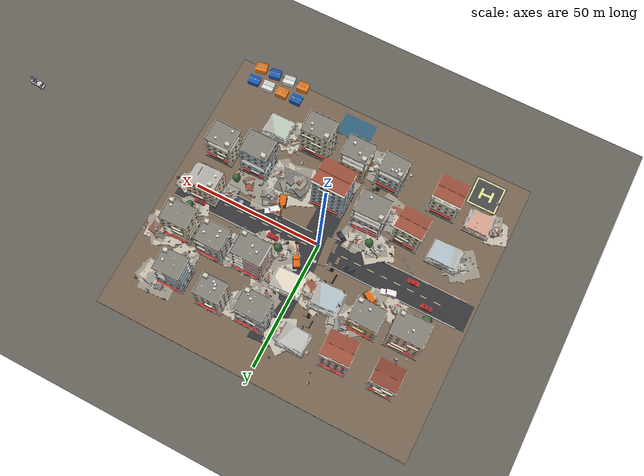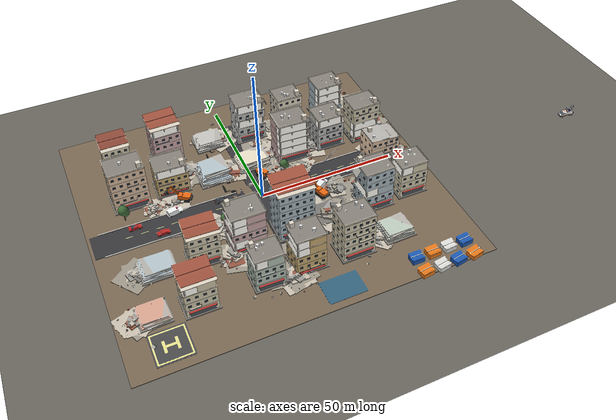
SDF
<?xml version="1.0"?>
<sdf version="1.7">
  <world name="disaster_city">

    <!-- kinematic pose control for the drones (mission node -> /gazebo/set_entity_state) -->
    <plugin name="gazebo_ros_state" filename="libgazebo_ros_state.so">
      <ros><namespace>/gazebo</namespace></ros>
      <update_rate>60.0</update_rate>
    </plugin>

    <!-- ================= physics / scene ================= -->
    <physics name="ode_default" type="ode">
      <max_step_size>0.004</max_step_size>
      <real_time_update_rate>250</real_time_update_rate>
      <real_time_factor>1</real_time_factor>
    </physics>

    <gui fullscreen="0">
      <camera name="user_camera">
        <pose>150 -62 42 0 0.42 2.35</pose>
        <view_controller>orbit</view_controller>
        <projection_type>perspective</projection_type>
      </camera>
    </gui>

    <scene>
      <ambient>0.55 0.55 0.58 1</ambient>
      <background>0.74 0.82 0.92 1</background>
      <shadows>true</shadows>
      <grid>false</grid>
      <origin_visual>false</origin_visual>
    </scene>

    <light name="key_sun" type="directional">
      <cast_shadows>true</cast_shadows>
      <pose>0 0 60 0 0 0</pose>
      <diffuse>1.05 0.99 0.89 1</diffuse>
      <specular>0.35 0.33 0.29 1</specular>
      <direction>-0.35 0.42 -0.84</direction>
      <attenuation>
        <range>1000</range>
        <constant>0.85</constant>
        <linear>0.005</linear>
        <quadratic>0.0</quadratic>
      </attenuation>
    </light>

    <light name="sky_fill" type="directional">
      <cast_shadows>false</cast_shadows>
      <pose>0 0 50 0 0 0</pose>
      <diffuse>0.40 0.40 0.42 1</diffuse>
      <specular>0.04 0.04 0.05 1</specular>
      <direction>0.55 -0.35 -0.75</direction>
    </light>

    <!-- spot washing the EAST facade of the damaged building (the victim
         facade) from the open ground east of it -->
    <light name="facade_spot" type="spot">
      <cast_shadows>false</cast_shadows>
      <pose>66 0 16 0 0 3.1416</pose>
      <diffuse>0.45 0.43 0.38 1</diffuse>
      <specular>0.1 0.1 0.09 1</specular>
      <direction>-0.80 0 -0.60</direction>
      <spot>
        <inner_angle>0.5</inner_angle>
        <outer_angle>0.95</outer_angle>
        <falloff>1.4</falloff>
      </spot>
      <attenuation>
        <range>70</range>
        <constant>0.6</constant>
        <linear>0.02</linear>
        <quadratic>0.0</quadratic>
      </attenuation>
    </light>

    <!-- soft warm fill over the building so it is not a dark mass -->
    <light name="building_fill" type="point">
      <cast_shadows>false</cast_shadows>
      <pose>48 0 22 0 0 0</pose>
      <diffuse>0.35 0.33 0.30 1</diffuse>
      <specular>0.03 0.03 0.03 1</specular>
      <attenuation>
        <range>45</range>
        <constant>0.6</constant>
        <linear>0.025</linear>
        <quadratic>0.0</quadratic>
      </attenuation>
    </light>

    <model name="terrain">
      <static>true</static>
      <pose>30 0 -0.05 0 0 0</pose>
      <link name="link">
        <collision name="c">
          <geometry><plane><normal>0 0 1</normal><size>600 600</size></plane></geometry>
          <surface><friction><ode><mu>80</mu><mu2>40</mu2></ode></friction></surface>
        </collision>
        <visual name="v">
          <cast_shadows>false</cast_shadows>
          <geometry><plane><normal>0 0 1</normal><size>600 600</size></plane></geometry>
          <material>
            <ambient>0.32 0.31 0.29 1</ambient>
            <diffuse>0.40 0.39 0.36 1</diffuse>
          </material>
        </visual>
      </link>
    </model>

    <!-- ================= the city (anchor, at the origin) ================= -->
    <include>
      <name>disaster_city</name>
      <uri>model://disaster_city</uri>
      <pose>0 0 0 0 0 0</pose>
    </include>

    <include>
      <name>damaged_building</name>
      <uri>model://damaged_building</uri>
      <pose>46 0 0.33 0 0 0</pose>
    </include>

    <include>
      <name>fiveg_base_station</name>
      <uri>model://fiveg_base_station</uri>
      <pose>125 -8 0.60 0 0 3.05</pose>
    </include>

    <model name="victim_nook">
      <static>true</static>
      <pose>46 0 0.33 0 0 0</pose>
      <link name="body">
        <visual name="slab">
          <pose>4.6 0.0 5.94 0 0 0</pose>
          <geometry><box><size>2.8 3.6 0.15</size></box></geometry>
          <material><ambient>0.22 0.22 0.24 1</ambient><diffuse>0.32 0.32 0.34 1</diffuse></material>
        </visual>
        <visual name="baffle_n">
          <pose>5.0 0.5 7.36 0 0 0</pose>
          <geometry><box><size>2.0 0.12 3.1</size></box></geometry>
          <material><ambient>0.15 0.14 0.13 1</ambient><diffuse>0.23 0.21 0.19 1</diffuse></material>
        </visual>
        <visual name="baffle_s">
          <pose>5.0 -0.5 7.36 0 0 0</pose>
          <geometry><box><size>2.0 0.12 3.1</size></box></geometry>
          <material><ambient>0.15 0.14 0.13 1</ambient><diffuse>0.23 0.21 0.19 1</diffuse></material>
        </visual>
        <visual name="baffle_back">
          <pose>4.05 0.0 7.36 0 0 0</pose>
          <geometry><box><size>0.12 1.3 3.1</size></box></geometry>
          <material><ambient>0.15 0.14 0.13 1</ambient><diffuse>0.23 0.21 0.19 1</diffuse></material>
        </visual>
        <visual name="baffle_top">
          <pose>5.0 0.0 8.41 0 0 0</pose>
          <geometry><box><size>2.0 1.3 0.2</size></box></geometry>
          <material><ambient>0.15 0.14 0.13 1</ambient><diffuse>0.23 0.21 0.19 1</diffuse></material>
        </visual>
      </link>
    </model>

    <!-- box-figure person on the deck, inside the opening, facing east (+X)
         out the window, right arm raised. World pose = building pose +
         local (5.05, 0, 6.01). -->
    <include>
      <name>victim</name>
      <uri>model://victim</uri>
      <pose>51.05 0.0 6.34 0 0 0</pose>
    </include>

  </world>
</sdf>

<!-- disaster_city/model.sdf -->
<sdf version="1.7">
  <model name="disaster_city">
    <static>true</static>
    <link name="body">
      <visual name="v">
        <geometry><mesh><uri>model://disaster_city/meshes/mesh.dae</uri></mesh></geometry>
      </visual>
    </link>
  </model>
</sdf>

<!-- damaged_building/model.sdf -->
<sdf version="1.7">
  <model name="damaged_building">
    <static>true</static>
    <link name="body">
      <visual name="v">
        <geometry><mesh><uri>model://damaged_building/meshes/mesh.dae</uri></mesh></geometry>
      </visual>
    </link>
  </model>
</sdf>

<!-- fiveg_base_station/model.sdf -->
<sdf version="1.7">
  <model name="fiveg_base_station">
    <static>true</static>
    <link name="body">
      <visual name="v">
        <geometry><mesh><uri>model://fiveg_base_station/meshes/mesh.dae</uri></mesh></geometry>
      </visual>
    </link>
  </model>
</sdf>

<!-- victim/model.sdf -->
<sdf version="1.7">
  <model name="victim">
    <static>true</static>
    <link name="body">

      <visual name="leg_l">
        <pose>0 0.12 0.42 0 0 0</pose>
        <geometry><box><size>0.18 0.16 0.84</size></box></geometry>
        <material><ambient>0.06 0.07 0.14 1</ambient><diffuse>0.13 0.15 0.30 1</diffuse></material>
      </visual>
      <visual name="leg_r">
        <pose>0 -0.12 0.42 0 0 0</pose>
        <geometry><box><size>0.18 0.16 0.84</size></box></geometry>
        <material><ambient>0.06 0.07 0.14 1</ambient><diffuse>0.13 0.15 0.30 1</diffuse></material>
      </visual>

      <visual name="pelvis">
        <pose>0 0 0.96 0 0 0</pose>
        <geometry><box><size>0.28 0.36 0.24</size></box></geometry>
        <material>
          <ambient>0.9 0.4 0.05 1</ambient><diffuse>1.0 0.45 0.05 1</diffuse>
          <emissive>0.55 0.22 0.02 1</emissive>
        </material>
      </visual>
      <visual name="torso">
        <pose>0 0 1.36 0 0 0</pose>
        <geometry><box><size>0.26 0.42 0.60</size></box></geometry>
        <material>
          <ambient>1.0 0.45 0.05 1</ambient><diffuse>1.0 0.5 0.08 1</diffuse>
          <emissive>0.7 0.30 0.03 1</emissive>
        </material>
      </visual>
      <!-- reflective band -->
      <visual name="hiviz_band">
        <pose>0.001 0 1.20 0 0 0</pose>
        <geometry><box><size>0.27 0.43 0.10</size></box></geometry>
        <material>
          <ambient>0.9 0.9 0.85 1</ambient><diffuse>0.95 0.95 0.9 1</diffuse>
          <emissive>0.8 0.8 0.75 1</emissive>
        </material>
      </visual>

      <visual name="neck">
        <pose>0 0 1.70 0 0 0</pose>
        <geometry><box><size>0.10 0.12 0.10</size></box></geometry>
        <material><ambient>0.55 0.4 0.3 1</ambient><diffuse>0.82 0.62 0.48 1</diffuse>
          <emissive>0.3 0.22 0.16 1</emissive></material>
      </visual>
      <visual name="head">
        <pose>0 0 1.84 0 0 0</pose>
        <geometry><box><size>0.17 0.16 0.20</size></box></geometry>
        <material><ambient>0.55 0.4 0.3 1</ambient><diffuse>0.82 0.62 0.48 1</diffuse>
          <emissive>0.32 0.24 0.18 1</emissive></material>
      </visual>
      <!-- white hard hat -->
      <visual name="hardhat">
        <pose>-0.01 0 1.97 0 0 0</pose>
        <geometry><box><size>0.20 0.19 0.10</size></box></geometry>
        <material>
          <ambient>0.95 0.95 0.95 1</ambient><diffuse>1.0 1.0 1.0 1</diffuse>
          <emissive>0.75 0.75 0.75 1</emissive>
        </material>
      </visual>

      <visual name="arm_l">
        <pose>0 0.30 1.28 0 0 0</pose>
        <geometry><box><size>0.12 0.12 0.60</size></box></geometry>
        <material><ambient>0.9 0.4 0.05 1</ambient><diffuse>0.95 0.42 0.06 1</diffuse>
          <emissive>0.55 0.22 0.02 1</emissive></material>
      </visual>
      <visual name="hand_l">
        <pose>0 0.30 0.95 0 0 0</pose>
        <geometry><box><size>0.10 0.10 0.12</size></box></geometry>
        <material><ambient>0.55 0.4 0.3 1</ambient><diffuse>0.82 0.62 0.48 1</diffuse>
          <emissive>0.3 0.22 0.16 1</emissive></material>
      </visual>

      <visual name="arm_r_upper">
        <pose>0.10 -0.32 1.60 0 -0.9 0</pose>
        <geometry><box><size>0.12 0.12 0.42</size></box></geometry>
        <material><ambient>0.9 0.4 0.05 1</ambient><diffuse>0.95 0.42 0.06 1</diffuse>
          <emissive>0.55 0.22 0.02 1</emissive></material>
      </visual>
      <visual name="arm_r_fore">
        <pose>0.30 -0.34 1.92 0 -0.35 0</pose>
        <geometry><box><size>0.11 0.11 0.44</size></box></geometry>
        <material><ambient>0.55 0.4 0.3 1</ambient><diffuse>0.82 0.62 0.48 1</diffuse>
          <emissive>0.32 0.24 0.18 1</emissive></material>
      </visual>
      <visual name="hand_r">
        <pose>0.42 -0.35 2.12 0 0 0</pose>
        <geometry><box><size>0.13 0.13 0.15</size></box></geometry>
        <material><ambient>0.6 0.44 0.33 1</ambient><diffuse>0.86 0.66 0.5 1</diffuse>
          <emissive>0.34 0.26 0.2 1</emissive></material>
      </visual>

    </link>
  </model>
</sdf>
